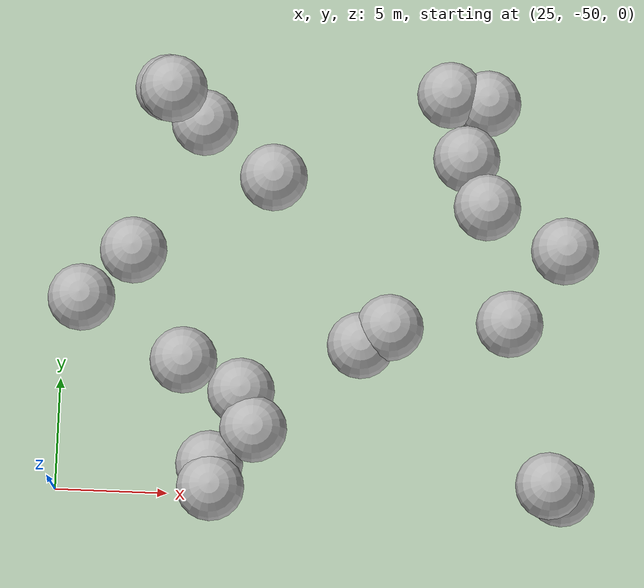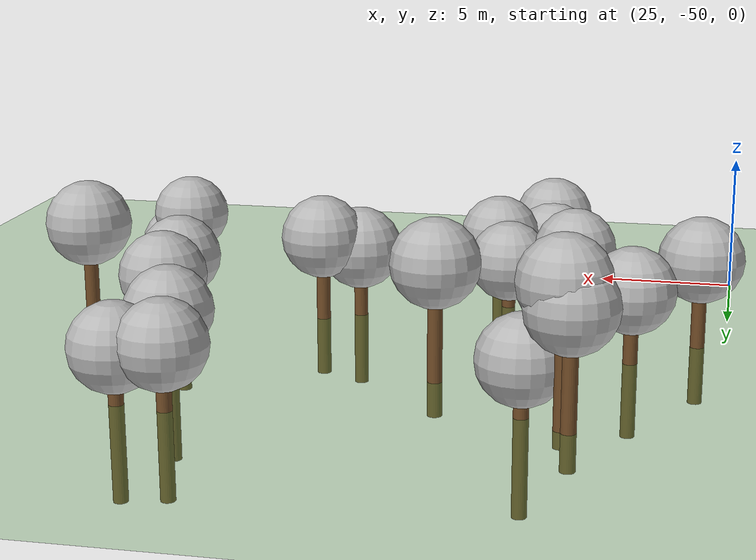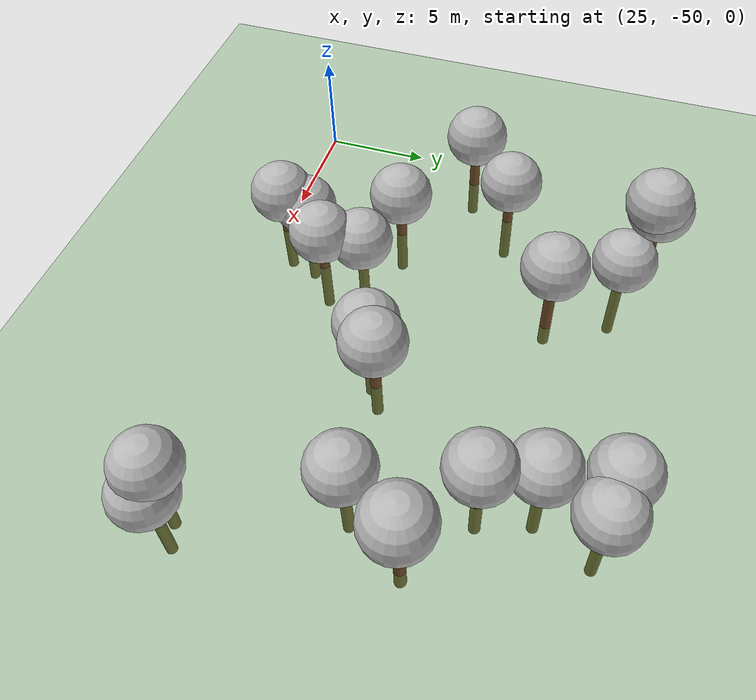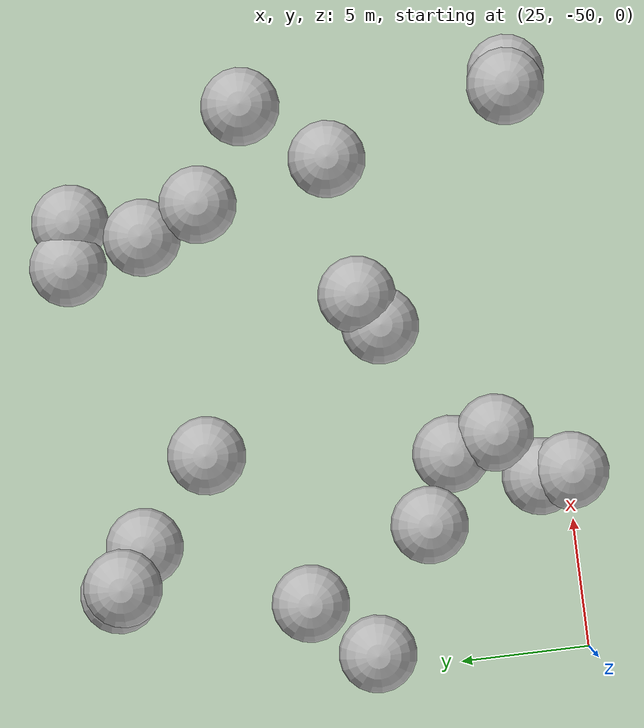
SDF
<sdf version="1.7">
 <world name="default">
  <model name="tree_simple494">
   <static>1</static>
   <link name="link">
    <pose>0 0 0.1 0 -0 0</pose>
    <collision name="collision_trunk">
     <pose>0 0 2 0 -0 0</pose>
     <geometry><cylinder><radius>0.25</radius><length>4</length></cylinder></geometry>
    </collision>
    <collision name="collision_treetop">
     <pose>0 0 5.2 0 -0 0</pose>
     <geometry><sphere><radius>1.5</radius></sphere></geometry>
    </collision>
    <visual name="trunk">
     <pose>0 0 2 0 -0 0</pose>
     <geometry><cylinder><radius>0.25</radius><length>4</length></cylinder></geometry>
     <material>
      <script>
       <uri>model://tree_simple/scripts</uri>
       <uri>model://tree_simple/materials/textures</uri>
       <name>TreeSimple/Trunk</name>
      </script>
     </material>
    </visual>
    <visual name="treetop">
     <pose>0 0 5.2 0 -0 0</pose>
     <geometry><sphere><radius>1.5</radius></sphere></geometry>
     <material>
      <script>
       <uri>model://tree_simple/scripts</uri>
       <uri>model://tree_simple/materials/textures</uri>
       <name>TreeSimple/Treetop</name>
      </script>
     </material>
    </visual>
   </link>
   <pose>39.6521 -42.6479 -2.24383 0 -0 0</pose>
  </model>
  <model name="tree_simple422">
   <static>1</static>
   <link name="link">
    <pose>0 0 0.1 0 -0 0</pose>
    <collision name="collision_trunk">
     <pose>0 0 2 0 -0 0</pose>
     <geometry><cylinder><radius>0.25</radius><length>4</length></cylinder></geometry>
    </collision>
    <collision name="collision_treetop">
     <pose>0 0 5.2 0 -0 0</pose>
     <geometry><sphere><radius>1.5</radius></sphere></geometry>
    </collision>
    <visual name="trunk">
     <pose>0 0 2 0 -0 0</pose>
     <geometry><cylinder><radius>0.25</radius><length>4</length></cylinder></geometry>
     <material>
      <script>
       <uri>model://tree_simple/scripts</uri>
       <uri>model://tree_simple/materials/textures</uri>
       <name>TreeSimple/Trunk</name>
      </script>
     </material>
    </visual>
    <visual name="treetop">
     <pose>0 0 5.2 0 -0 0</pose>
     <geometry><sphere><radius>1.5</radius></sphere></geometry>
     <material>
      <script>
       <uri>model://tree_simple/scripts</uri>
       <uri>model://tree_simple/materials/textures</uri>
       <name>TreeSimple/Treetop</name>
      </script>
     </material>
    </visual>
   </link>
   <pose>46.9341 -49.3003 -3.20291 0 -0 0</pose>
  </model>
  <model name="tree_simple406">
   <static>1</static>
   <link name="link">
    <pose>0 0 0.1 0 -0 0</pose>
    <collision name="collision_trunk">
     <pose>0 0 2 0 -0 0</pose>
     <geometry><cylinder><radius>0.25</radius><length>4</length></cylinder></geometry>
    </collision>
    <collision name="collision_treetop">
     <pose>0 0 5.2 0 -0 0</pose>
     <geometry><sphere><radius>1.5</radius></sphere></geometry>
    </collision>
    <visual name="trunk">
     <pose>0 0 2 0 -0 0</pose>
     <geometry><cylinder><radius>0.25</radius><length>4</length></cylinder></geometry>
     <material>
      <script>
       <uri>model://tree_simple/scripts</uri>
       <uri>model://tree_simple/materials/textures</uri>
       <name>TreeSimple/Trunk</name>
      </script>
     </material>
    </visual>
    <visual name="treetop">
     <pose>0 0 5.2 0 -0 0</pose>
     <geometry><sphere><radius>1.5</radius></sphere></geometry>
     <material>
      <script>
       <uri>model://tree_simple/scripts</uri>
       <uri>model://tree_simple/materials/textures</uri>
       <name>TreeSimple/Treetop</name>
      </script>
     </material>
    </visual>
   </link>
   <pose>31.8934 -48.8404 -3.47537 0 -0 0</pose>
  </model>
  <model name="tree_simple399">
   <static>1</static>
   <link name="link">
    <pose>0 0 0.1 0 -0 0</pose>
    <collision name="collision_trunk">
     <pose>0 0 2 0 -0 0</pose>
     <geometry><cylinder><radius>0.25</radius><length>4</length></cylinder></geometry>
    </collision>
    <collision name="collision_treetop">
     <pose>0 0 5.2 0 -0 0</pose>
     <geometry><sphere><radius>1.5</radius></sphere></geometry>
    </collision>
    <visual name="trunk">
     <pose>0 0 2 0 -0 0</pose>
     <geometry><cylinder><radius>0.25</radius><length>4</length></cylinder></geometry>
     <material>
      <script>
       <uri>model://tree_simple/scripts</uri>
       <uri>model://tree_simple/materials/textures</uri>
       <name>TreeSimple/Trunk</name>
      </script>
     </material>
    </visual>
    <visual name="treetop">
     <pose>0 0 5.2 0 -0 0</pose>
     <geometry><sphere><radius>1.5</radius></sphere></geometry>
     <material>
      <script>
       <uri>model://tree_simple/scripts</uri>
       <uri>model://tree_simple/materials/textures</uri>
       <name>TreeSimple/Treetop</name>
      </script>
     </material>
    </visual>
   </link>
   <pose>28.1464 -39.4725 -2.77708 0 -0 0</pose>
  </model>
  <model name="tree_simple362">
   <static>1</static>
   <link name="link">
    <pose>0 0 0.1 0 -0 0</pose>
    <collision name="collision_trunk">
     <pose>0 0 2 0 -0 0</pose>
     <geometry><cylinder><radius>0.25</radius><length>4</length></cylinder></geometry>
    </collision>
    <collision name="collision_treetop">
     <pose>0 0 5.2 0 -0 0</pose>
     <geometry><sphere><radius>1.5</radius></sphere></geometry>
    </collision>
    <visual name="trunk">
     <pose>0 0 2 0 -0 0</pose>
     <geometry><cylinder><radius>0.25</radius><length>4</length></cylinder></geometry>
     <material>
      <script>
       <uri>model://tree_simple/scripts</uri>
       <uri>model://tree_simple/materials/textures</uri>
       <name>TreeSimple/Trunk</name>
      </script>
     </material>
    </visual>
    <visual name="treetop">
     <pose>0 0 5.2 0 -0 0</pose>
     <geometry><sphere><radius>1.5</radius></sphere></geometry>
     <material>
      <script>
       <uri>model://tree_simple/scripts</uri>
       <uri>model://tree_simple/materials/textures</uri>
       <name>TreeSimple/Treetop</name>
      </script>
     </material>
    </visual>
   </link>
   <pose>44.9855 -42.1504 -3.10801 0 -0 0</pose>
  </model>
  <model name="tree_simple355">
   <static>1</static>
   <link name="link">
    <pose>0 0 0.1 0 -0 0</pose>
    <collision name="collision_trunk">
     <pose>0 0 2 0 -0 0</pose>
     <geometry><cylinder><radius>0.25</radius><length>4</length></cylinder></geometry>
    </collision>
    <collision name="collision_treetop">
     <pose>0 0 5.2 0 -0 0</pose>
     <geometry><sphere><radius>1.5</radius></sphere></geometry>
    </collision>
    <visual name="trunk">
     <pose>0 0 2 0 -0 0</pose>
     <geometry><cylinder><radius>0.25</radius><length>4</length></cylinder></geometry>
     <material>
      <script>
       <uri>model://tree_simple/scripts</uri>
       <uri>model://tree_simple/materials/textures</uri>
       <name>TreeSimple/Trunk</name>
      </script>
     </material>
    </visual>
    <visual name="treetop">
     <pose>0 0 5.2 0 -0 0</pose>
     <geometry><sphere><radius>1.5</radius></sphere></geometry>
     <material>
      <script>
       <uri>model://tree_simple/scripts</uri>
       <uri>model://tree_simple/materials/textures</uri>
       <name>TreeSimple/Treetop</name>
      </script>
     </material>
    </visual>
   </link>
   <pose>25.9753 -41.7874 -2.19477 0 -0 0</pose>
  </model>
  <model name="tree_simple321">
   <static>1</static>
   <link name="link">
    <pose>0 0 0.1 0 -0 0</pose>
    <collision name="collision_trunk">
     <pose>0 0 2 0 -0 0</pose>
     <geometry><cylinder><radius>0.25</radius><length>4</length></cylinder></geometry>
    </collision>
    <collision name="collision_treetop">
     <pose>0 0 5.2 0 -0 0</pose>
     <geometry><sphere><radius>1.5</radius></sphere></geometry>
    </collision>
    <visual name="trunk">
     <pose>0 0 2 0 -0 0</pose>
     <geometry><cylinder><radius>0.25</radius><length>4</length></cylinder></geometry>
     <material>
      <script>
       <uri>model://tree_simple/scripts</uri>
       <uri>model://tree_simple/materials/textures</uri>
       <name>TreeSimple/Trunk</name>
      </script>
     </material>
    </visual>
    <visual name="treetop">
     <pose>0 0 5.2 0 -0 0</pose>
     <geometry><sphere><radius>1.5</radius></sphere></geometry>
     <material>
      <script>
       <uri>model://tree_simple/scripts</uri>
       <uri>model://tree_simple/materials/textures</uri>
       <name>TreeSimple/Treetop</name>
      </script>
     </material>
    </visual>
   </link>
   <pose>42.0466 -31.7939 -3.16338 0 -0 0</pose>
  </model>
  <model name="tree_simple300">
   <static>1</static>
   <link name="link">
    <pose>0 0 0.1 0 -0 0</pose>
    <collision name="collision_trunk">
     <pose>0 0 2 0 -0 0</pose>
     <geometry><cylinder><radius>0.25</radius><length>4</length></cylinder></geometry>
    </collision>
    <collision name="collision_treetop">
     <pose>0 0 5.2 0 -0 0</pose>
     <geometry><sphere><radius>1.5</radius></sphere></geometry>
    </collision>
    <visual name="trunk">
     <pose>0 0 2 0 -0 0</pose>
     <geometry><cylinder><radius>0.25</radius><length>4</length></cylinder></geometry>
     <material>
      <script>
       <uri>model://tree_simple/scripts</uri>
       <uri>model://tree_simple/materials/textures</uri>
       <name>TreeSimple/Trunk</name>
      </script>
     </material>
    </visual>
    <visual name="treetop">
     <pose>0 0 5.2 0 -0 0</pose>
     <geometry><sphere><radius>1.5</radius></sphere></geometry>
     <material>
      <script>
       <uri>model://tree_simple/scripts</uri>
       <uri>model://tree_simple/materials/textures</uri>
       <name>TreeSimple/Treetop</name>
      </script>
     </material>
    </visual>
   </link>
   <pose>34.2894 -36.2522 -1.31395 0 -0 0</pose>
  </model>
  <model name="tree_simple280">
   <static>1</static>
   <link name="link">
    <pose>0 0 0.1 0 -0 0</pose>
    <collision name="collision_trunk">
     <pose>0 0 2 0 -0 0</pose>
     <geometry><cylinder><radius>0.25</radius><length>4</length></cylinder></geometry>
    </collision>
    <collision name="collision_treetop">
     <pose>0 0 5.2 0 -0 0</pose>
     <geometry><sphere><radius>1.5</radius></sphere></geometry>
    </collision>
    <visual name="trunk">
     <pose>0 0 2 0 -0 0</pose>
     <geometry><cylinder><radius>0.25</radius><length>4</length></cylinder></geometry>
     <material>
      <script>
       <uri>model://tree_simple/scripts</uri>
       <uri>model://tree_simple/materials/textures</uri>
       <name>TreeSimple/Trunk</name>
      </script>
     </material>
    </visual>
    <visual name="treetop">
     <pose>0 0 5.2 0 -0 0</pose>
     <geometry><sphere><radius>1.5</radius></sphere></geometry>
     <material>
      <script>
       <uri>model://tree_simple/scripts</uri>
       <uri>model://tree_simple/materials/textures</uri>
       <name>TreeSimple/Treetop</name>
      </script>
     </material>
    </visual>
   </link>
   <pose>42.8499 -34.7521 -2.953 0 -0 0</pose>
  </model>
  <model name="tree_simple261">
   <static>1</static>
   <link name="link">
    <pose>0 0 0.1 0 -0 0</pose>
    <collision name="collision_trunk">
     <pose>0 0 2 0 -0 0</pose>
     <geometry><cylinder><radius>0.25</radius><length>4</length></cylinder></geometry>
    </collision>
    <collision name="collision_treetop">
     <pose>0 0 5.2 0 -0 0</pose>
     <geometry><sphere><radius>1.5</radius></sphere></geometry>
    </collision>
    <visual name="trunk">
     <pose>0 0 2 0 -0 0</pose>
     <geometry><cylinder><radius>0.25</radius><length>4</length></cylinder></geometry>
     <material>
      <script>
       <uri>model://tree_simple/scripts</uri>
       <uri>model://tree_simple/materials/textures</uri>
       <name>TreeSimple/Trunk</name>
      </script>
     </material>
    </visual>
    <visual name="treetop">
     <pose>0 0 5.2 0 -0 0</pose>
     <geometry><sphere><radius>1.5</radius></sphere></geometry>
     <material>
      <script>
       <uri>model://tree_simple/scripts</uri>
       <uri>model://tree_simple/materials/textures</uri>
       <name>TreeSimple/Treetop</name>
      </script>
     </material>
    </visual>
   </link>
   <pose>33.7827 -47.2764 -3.00662 0 -0 0</pose>
  </model>
  <model name="tree_simple225">
   <static>1</static>
   <link name="link">
    <pose>0 0 0.1 0 -0 0</pose>
    <collision name="collision_trunk">
     <pose>0 0 2 0 -0 0</pose>
     <geometry><cylinder><radius>0.25</radius><length>4</length></cylinder></geometry>
    </collision>
    <collision name="collision_treetop">
     <pose>0 0 5.2 0 -0 0</pose>
     <geometry><sphere><radius>1.5</radius></sphere></geometry>
    </collision>
    <visual name="trunk">
     <pose>0 0 2 0 -0 0</pose>
     <geometry><cylinder><radius>0.25</radius><length>4</length></cylinder></geometry>
     <material>
      <script>
       <uri>model://tree_simple/scripts</uri>
       <uri>model://tree_simple/materials/textures</uri>
       <name>TreeSimple/Trunk</name>
      </script>
     </material>
    </visual>
    <visual name="treetop">
     <pose>0 0 5.2 0 -0 0</pose>
     <geometry><sphere><radius>1.5</radius></sphere></geometry>
     <material>
      <script>
       <uri>model://tree_simple/scripts</uri>
       <uri>model://tree_simple/materials/textures</uri>
       <name>TreeSimple/Treetop</name>
      </script>
     </material>
    </visual>
   </link>
   <pose>30.5864 -44.3529 -2.69075 0 -0 0</pose>
  </model>
  <model name="tree_simple207">
   <static>1</static>
   <link name="link">
    <pose>0 0 0.1 0 -0 0</pose>
    <collision name="collision_trunk">
     <pose>0 0 2 0 -0 0</pose>
     <geometry><cylinder><radius>0.25</radius><length>4</length></cylinder></geometry>
    </collision>
    <collision name="collision_treetop">
     <pose>0 0 5.2 0 -0 0</pose>
     <geometry><sphere><radius>1.5</radius></sphere></geometry>
    </collision>
    <visual name="trunk">
     <pose>0 0 2 0 -0 0</pose>
     <geometry><cylinder><radius>0.25</radius><length>4</length></cylinder></geometry>
     <material>
      <script>
       <uri>model://tree_simple/scripts</uri>
       <uri>model://tree_simple/materials/textures</uri>
       <name>TreeSimple/Trunk</name>
      </script>
     </material>
    </visual>
    <visual name="treetop">
     <pose>0 0 5.2 0 -0 0</pose>
     <geometry><sphere><radius>1.5</radius></sphere></geometry>
     <material>
      <script>
       <uri>model://tree_simple/scripts</uri>
       <uri>model://tree_simple/materials/textures</uri>
       <name>TreeSimple/Treetop</name>
      </script>
     </material>
    </visual>
   </link>
   <pose>29.7172 -32.5331 -0.692686 0 -0 0</pose>
  </model>
  <model name="tree_simple202">
   <static>1</static>
   <link name="link">
    <pose>0 0 0.1 0 -0 0</pose>
    <collision name="collision_trunk">
     <pose>0 0 2 0 -0 0</pose>
     <geometry><cylinder><radius>0.25</radius><length>4</length></cylinder></geometry>
    </collision>
    <collision name="collision_treetop">
     <pose>0 0 5.2 0 -0 0</pose>
     <geometry><sphere><radius>1.5</radius></sphere></geometry>
    </collision>
    <visual name="trunk">
     <pose>0 0 2 0 -0 0</pose>
     <geometry><cylinder><radius>0.25</radius><length>4</length></cylinder></geometry>
     <material>
      <script>
       <uri>model://tree_simple/scripts</uri>
       <uri>model://tree_simple/materials/textures</uri>
       <name>TreeSimple/Trunk</name>
      </script>
     </material>
    </visual>
    <visual name="treetop">
     <pose>0 0 5.2 0 -0 0</pose>
     <geometry><sphere><radius>1.5</radius></sphere></geometry>
     <material>
      <script>
       <uri>model://tree_simple/scripts</uri>
       <uri>model://tree_simple/materials/textures</uri>
       <name>TreeSimple/Treetop</name>
      </script>
     </material>
    </visual>
   </link>
   <pose>33.1652 -45.526 -3.5622 0 -0 0</pose>
  </model>
  <model name="tree_simple182">
   <static>1</static>
   <link name="link">
    <pose>0 0 0.1 0 -0 0</pose>
    <collision name="collision_trunk">
     <pose>0 0 2 0 -0 0</pose>
     <geometry><cylinder><radius>0.25</radius><length>4</length></cylinder></geometry>
    </collision>
    <collision name="collision_treetop">
     <pose>0 0 5.2 0 -0 0</pose>
     <geometry><sphere><radius>1.5</radius></sphere></geometry>
    </collision>
    <visual name="trunk">
     <pose>0 0 2 0 -0 0</pose>
     <geometry><cylinder><radius>0.25</radius><length>4</length></cylinder></geometry>
     <material>
      <script>
       <uri>model://tree_simple/scripts</uri>
       <uri>model://tree_simple/materials/textures</uri>
       <name>TreeSimple/Trunk</name>
      </script>
     </material>
    </visual>
    <visual name="treetop">
     <pose>0 0 5.2 0 -0 0</pose>
     <geometry><sphere><radius>1.5</radius></sphere></geometry>
     <material>
      <script>
       <uri>model://tree_simple/scripts</uri>
       <uri>model://tree_simple/materials/textures</uri>
       <name>TreeSimple/Treetop</name>
      </script>
     </material>
    </visual>
   </link>
   <pose>31.0476 -33.3896 -3.45496 0 -0 0</pose>
  </model>
  <model name="tree_simple173">
   <static>1</static>
   <link name="link">
    <pose>0 0 0.1 0 -0 0</pose>
    <collision name="collision_trunk">
     <pose>0 0 2 0 -0 0</pose>
     <geometry><cylinder><radius>0.25</radius><length>4</length></cylinder></geometry>
    </collision>
    <collision name="collision_treetop">
     <pose>0 0 5.2 0 -0 0</pose>
     <geometry><sphere><radius>1.5</radius></sphere></geometry>
    </collision>
    <visual name="trunk">
     <pose>0 0 2 0 -0 0</pose>
     <geometry><cylinder><radius>0.25</radius><length>4</length></cylinder></geometry>
     <material>
      <script>
       <uri>model://tree_simple/scripts</uri>
       <uri>model://tree_simple/materials/textures</uri>
       <name>TreeSimple/Trunk</name>
      </script>
     </material>
    </visual>
    <visual name="treetop">
     <pose>0 0 5.2 0 -0 0</pose>
     <geometry><sphere><radius>1.5</radius></sphere></geometry>
     <material>
      <script>
       <uri>model://tree_simple/scripts</uri>
       <uri>model://tree_simple/materials/textures</uri>
       <name>TreeSimple/Treetop</name>
      </script>
     </material>
    </visual>
   </link>
   <pose>43.8187 -37.0377 -2.42232 0 -0 0</pose>
  </model>
  <model name="tree_simple137">
   <static>1</static>
   <link name="link">
    <pose>0 0 0.1 0 -0 0</pose>
    <collision name="collision_trunk">
     <pose>0 0 2 0 -0 0</pose>
     <geometry><cylinder><radius>0.25</radius><length>4</length></cylinder></geometry>
    </collision>
    <collision name="collision_treetop">
     <pose>0 0 5.2 0 -0 0</pose>
     <geometry><sphere><radius>1.5</radius></sphere></geometry>
    </collision>
    <visual name="trunk">
     <pose>0 0 2 0 -0 0</pose>
     <geometry><cylinder><radius>0.25</radius><length>4</length></cylinder></geometry>
     <material>
      <script>
       <uri>model://tree_simple/scripts</uri>
       <uri>model://tree_simple/materials/textures</uri>
       <name>TreeSimple/Trunk</name>
      </script>
     </material>
    </visual>
    <visual name="treetop">
     <pose>0 0 5.2 0 -0 0</pose>
     <geometry><sphere><radius>1.5</radius></sphere></geometry>
     <material>
      <script>
       <uri>model://tree_simple/scripts</uri>
       <uri>model://tree_simple/materials/textures</uri>
       <name>TreeSimple/Treetop</name>
      </script>
     </material>
    </visual>
   </link>
   <pose>43.7453 -32.0584 -3.44095 0 -0 0</pose>
  </model>
  <model name="tree_simple136">
   <static>1</static>
   <link name="link">
    <pose>0 0 0.1 0 -0 0</pose>
    <collision name="collision_trunk">
     <pose>0 0 2 0 -0 0</pose>
     <geometry><cylinder><radius>0.25</radius><length>4</length></cylinder></geometry>
    </collision>
    <collision name="collision_treetop">
     <pose>0 0 5.2 0 -0 0</pose>
     <geometry><sphere><radius>1.5</radius></sphere></geometry>
    </collision>
    <visual name="trunk">
     <pose>0 0 2 0 -0 0</pose>
     <geometry><cylinder><radius>0.25</radius><length>4</length></cylinder></geometry>
     <material>
      <script>
       <uri>model://tree_simple/scripts</uri>
       <uri>model://tree_simple/materials/textures</uri>
       <name>TreeSimple/Trunk</name>
      </script>
     </material>
    </visual>
    <visual name="treetop">
     <pose>0 0 5.2 0 -0 0</pose>
     <geometry><sphere><radius>1.5</radius></sphere></geometry>
     <material>
      <script>
       <uri>model://tree_simple/scripts</uri>
       <uri>model://tree_simple/materials/textures</uri>
       <name>TreeSimple/Treetop</name>
      </script>
     </material>
    </visual>
   </link>
   <pose>47.5461 -49.4529 -4.51865 0 -0 0</pose>
  </model>
  <model name="tree_simple56">
   <static>1</static>
   <link name="link">
    <pose>0 0 0.1 0 -0 0</pose>
    <collision name="collision_trunk">
     <pose>0 0 2 0 -0 0</pose>
     <geometry><cylinder><radius>0.25</radius><length>4</length></cylinder></geometry>
    </collision>
    <collision name="collision_treetop">
     <pose>0 0 5.2 0 -0 0</pose>
     <geometry><sphere><radius>1.5</radius></sphere></geometry>
    </collision>
    <visual name="trunk">
     <pose>0 0 2 0 -0 0</pose>
     <geometry><cylinder><radius>0.25</radius><length>4</length></cylinder></geometry>
     <material>
      <script>
       <uri>model://tree_simple/scripts</uri>
       <uri>model://tree_simple/materials/textures</uri>
       <name>TreeSimple/Trunk</name>
      </script>
     </material>
    </visual>
    <visual name="treetop">
     <pose>0 0 5.2 0 -0 0</pose>
     <geometry><sphere><radius>1.5</radius></sphere></geometry>
     <material>
      <script>
       <uri>model://tree_simple/scripts</uri>
       <uri>model://tree_simple/materials/textures</uri>
       <name>TreeSimple/Treetop</name>
      </script>
     </material>
    </visual>
   </link>
   <pose>38.402 -43.3996 -2.77826 0 -0 0</pose>
  </model>
  <model name="tree_simple31">
   <static>1</static>
   <link name="link">
    <pose>0 0 0.1 0 -0 0</pose>
    <collision name="collision_trunk">
     <pose>0 0 2 0 -0 0</pose>
     <geometry><cylinder><radius>0.25</radius><length>4</length></cylinder></geometry>
    </collision>
    <collision name="collision_treetop">
     <pose>0 0 5.2 0 -0 0</pose>
     <geometry><sphere><radius>1.5</radius></sphere></geometry>
    </collision>
    <visual name="trunk">
     <pose>0 0 2 0 -0 0</pose>
     <geometry><cylinder><radius>0.25</radius><length>4</length></cylinder></geometry>
     <material>
      <script>
       <uri>model://tree_simple/scripts</uri>
       <uri>model://tree_simple/materials/textures</uri>
       <name>TreeSimple/Trunk</name>
      </script>
     </material>
    </visual>
    <visual name="treetop">
     <pose>0 0 5.2 0 -0 0</pose>
     <geometry><sphere><radius>1.5</radius></sphere></geometry>
     <material>
      <script>
       <uri>model://tree_simple/scripts</uri>
       <uri>model://tree_simple/materials/textures</uri>
       <name>TreeSimple/Treetop</name>
      </script>
     </material>
    </visual>
   </link>
   <pose>29.4679 -32.3423 -1.38115 0 -0 0</pose>
  </model>
  <model name="tree_simple16">
   <static>1</static>
   <link name="link">
    <pose>0 0 0.1 0 -0 0</pose>
    <collision name="collision_trunk">
     <pose>0 0 2 0 -0 0</pose>
     <geometry><cylinder><radius>0.25</radius><length>4</length></cylinder></geometry>
    </collision>
    <collision name="collision_treetop">
     <pose>0 0 5.2 0 -0 0</pose>
     <geometry><sphere><radius>1.5</radius></sphere></geometry>
    </collision>
    <visual name="trunk">
     <pose>0 0 2 0 -0 0</pose>
     <geometry><cylinder><radius>0.25</radius><length>4</length></cylinder></geometry>
     <material>
      <script>
       <uri>model://tree_simple/scripts</uri>
       <uri>model://tree_simple/materials/textures</uri>
       <name>TreeSimple/Trunk</name>
      </script>
     </material>
    </visual>
    <visual name="treetop">
     <pose>0 0 5.2 0 -0 0</pose>
     <geometry><sphere><radius>1.5</radius></sphere></geometry>
     <material>
      <script>
       <uri>model://tree_simple/scripts</uri>
       <uri>model://tree_simple/materials/textures</uri>
       <name>TreeSimple/Treetop</name>
      </script>
     </material>
    </visual>
   </link>
   <pose>32.0026 -49.9549 -2.77922 0 -0 0</pose>
  </model>
  <model name="tree_simple5">
   <static>1</static>
   <link name="link">
    <pose>0 0 0.1 0 -0 0</pose>
    <collision name="collision_trunk">
     <pose>0 0 2 0 -0 0</pose>
     <geometry><cylinder><radius>0.25</radius><length>4</length></cylinder></geometry>
    </collision>
    <collision name="collision_treetop">
     <pose>0 0 5.2 0 -0 0</pose>
     <geometry><sphere><radius>1.5</radius></sphere></geometry>
    </collision>
    <visual name="trunk">
     <pose>0 0 2 0 -0 0</pose>
     <geometry><cylinder><radius>0.25</radius><length>4</length></cylinder></geometry>
     <material>
      <script>
       <uri>model://tree_simple/scripts</uri>
       <uri>model://tree_simple/materials/textures</uri>
       <name>TreeSimple/Trunk</name>
      </script>
     </material>
    </visual>
    <visual name="treetop">
     <pose>0 0 5.2 0 -0 0</pose>
     <geometry><sphere><radius>1.5</radius></sphere></geometry>
     <material>
      <script>
       <uri>model://tree_simple/scripts</uri>
       <uri>model://tree_simple/materials/textures</uri>
       <name>TreeSimple/Treetop</name>
      </script>
     </material>
    </visual>
   </link>
   <pose>47.2513 -39.1196 -1.27232 0 -0 0</pose>
  </model>
  <model name="ground_plane">
   <static>1</static>
   <link name="link">
    <collision name="collision">
     <geometry><plane><normal>0 0 1</normal><size>250 250</size></plane></geometry>
     <surface><friction><ode><mu>1</mu><mu2>1</mu2></ode></friction></surface>
    </collision>
    <visual name="grass">
     <cast_shadows>0</cast_shadows>
     <geometry><plane><normal>0 0 1</normal><size>150 250</size></plane></geometry>
     <material>
      <script><uri>file://media/materials/scripts/Gazebo.material</uri><name>Gazebo/Grass</name></script>
     </material>
    </visual>
   </link>
  </model>
 </world>
</sdf>
